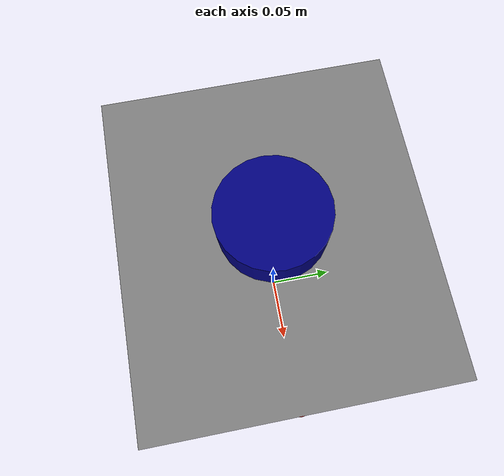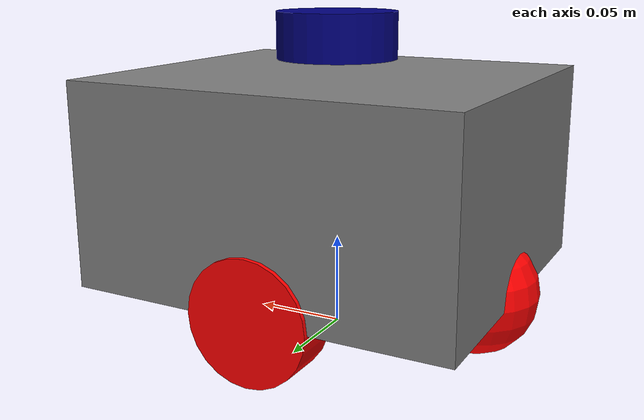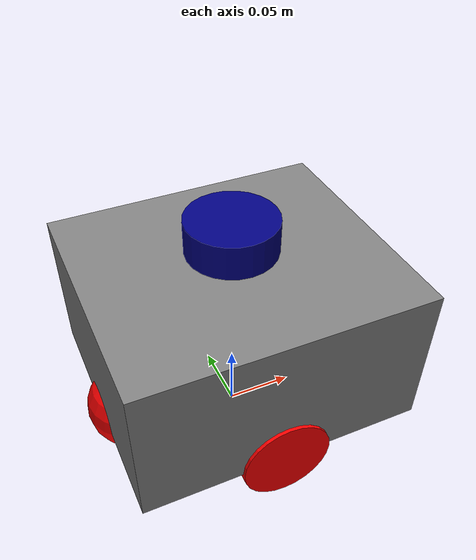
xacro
<?xml version="1.0"?>
<robot name="dasrobot" xmlns:xacro="http://www.ros.org/wiki/xacro">

    <!-- Конфигурационные модули -->
    <xacro:include filename="materials.xacro" />
    <xacro:include filename="properties.xacro" />
    <xacro:include filename="inertial_macros.xacro" />

    <!-- Основные модули -->
    <xacro:include filename="base.xacro" />
    <xacro:include filename="wheels.xacro" />
    <xacro:include filename="lidar.xacro" />

    <!-- Подключаемые модули -->
    <xacro:include filename="gazebo_plugins.xacro" />

</robot>

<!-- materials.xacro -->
<robot xmlns:xacro="http://www.ros.org/wiki/xacro">

    <!-- Цвета -->
    <material name="blue">
        <color rgba="0 0 0.5 1" />
    </material>

    <material name="red">
        <color rgba="1 0 0 1" />
    </material>

    <material name="grey">
        <color rgba="0.5 0.5 0.5 1" />
    </material>

    <material name="white">
        <color rgba="1.0 1.0 1.0 1.0"/>
    </material>

</robot>

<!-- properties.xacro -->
<robot xmlns:xacro="http://www.ros.org/wiki/xacro">

    <!-- Параметры базы -->
    <xacro:property name="base_mass" value="1.0" />
    <xacro:property name="base_length" value="0.21" />
    <xacro:property name="base_width" value="0.185" />
    <xacro:property name="base_height" value="0.11" />

    <!-- Параметры лидара -->
    <xacro:property name="lidar_mass" value="0.1" />
    <xacro:property name="lidar_length" value="0.025" />
    <xacro:property name="lidar_radius" value="0.0325" />
    <xacro:property name="lidar_offset_z" value="0.13" />

    <!-- Параметры ведущих колес -->
    <xacro:property name="wheel_mass" value="0.1" />
    <xacro:property name="wheel_count" value="2" />
    <xacro:property name="wheel_radius" value="0.033" />
    <xacro:property name="wheel_length" value="0.025" />
    <xacro:property name="wheel_separation" value="0.165" />

    <!-- Параметры поддерживающих колес -->
    <xacro:property name="caster_mass" value="0.1" />
    <xacro:property name="caster_radius" value="0.033" />
    <xacro:property name="caster_separation" value="0.165" />

</robot>

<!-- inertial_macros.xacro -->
<robot xmlns:xacro="http://www.ros.org/wiki/xacro">

    <!-- Макросы инерции -->
    <xacro:macro name="box_inertial" params="mass length width height">
        <inertial>
            <origin xyz="0 0 ${height/2}" rpy="0 0 0"/>
            <mass value="${mass}"/>
            <inertia ixx="${(mass/12.0)*(width*width + height*height)}"
                    iyy="${(mass/12.0)*(length*length + height*height)}"
                    izz="${(mass/12.0)*(length*length + width*width)}"
                    ixy="0" ixz="0" iyz="0"/>
        </inertial>
    </xacro:macro>

    <xacro:macro name="sphere_inertial" params="mass radius">
        <inertial>
            <origin xyz="0 0 0" rpy="0 0 0"/>
            <mass value="${mass}"/>
            <inertia ixx="${(2.0/5.0)*mass*radius*radius}"
                    iyy="${(2.0/5.0)*mass*radius*radius}"
                    izz="${(2.0/5.0)*mass*radius*radius}"
                    ixy="0" ixz="0" iyz="0"/>
        </inertial>
    </xacro:macro>

    <xacro:macro name="cylinder_inertial" params="mass radius length">
        <inertial>
            <origin xyz="0 0 0" rpy="0 0 0"/>
            <mass value="${mass}"/>
            <inertia ixx="${(mass/12.0)*(3*radius*radius + length*length)}"
                    iyy="${(mass/4.0)*radius*radius + (mass/12.0)*length*length}"
                    izz="${(mass/4.0)*radius*radius + (mass/12.0)*length*length}"
                    ixy="0" ixz="0" iyz="0"/>
        </inertial>
    </xacro:macro>

</robot>

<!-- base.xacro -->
<robot xmlns:xacro="http://www.ros.org/wiki/xacro">

    <!-- Ссылки -->
    <link name="base_footprint" />

    <link name="base_link">
        <visual>
            <geometry>
                <box size="${base_length} ${base_width} ${base_height}" />
            </geometry>
            <origin xyz="0 0 ${base_height / 2.0}" rpy="0 0 0" />
            <material name="grey" />
        </visual>
        <collision>
            <geometry>
                <box size="${base_length} ${base_width} ${base_height}" />
            </geometry>
            <origin xyz="0 0 ${base_height / 2.0}" rpy="0 0 0" />
        </collision>
        <xacro:box_inertial mass="${base_mass}" length="${base_length}" width="${base_width}" height="${base_height}"/>
    </link>

    <!-- Соединения -->
    <joint name="base_joint" type="fixed">
        <parent link="base_footprint" />
        <child link="base_link" />
        <origin xyz="0 0 ${wheel_radius}" rpy="0 0 0" />
    </joint>

</robot>

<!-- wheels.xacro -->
<robot xmlns:xacro="http://www.ros.org/wiki/xacro">

    <!-- Макросы -->
    <xacro:macro name="wheel_link" params="prefix">
        <link name="${prefix}_wheel_link">
            <visual>
                <geometry>
                    <cylinder radius="${wheel_radius}" length="${wheel_length}" />
                </geometry>
                <origin xyz="0 0 0" rpy="${pi / 2.0} 0 0" />
                <material name="red" />
            </visual>
            <collision>
                <geometry>
                    <sphere radius="${wheel_radius}" />
                </geometry>
                <origin xyz="0 0 0" rpy="${pi / 2.0} 0 0" />
            </collision>
            <xacro:cylinder_inertial mass="${wheel_mass}" radius="${wheel_radius}" length="${wheel_length}"/>
        </link>
    </xacro:macro>

    <xacro:macro name="caster_link" params="prefix">
        <link name="${prefix}_caster_link">
            <visual>
                <geometry>
                    <sphere radius="${caster_radius}" />
                </geometry>
                <origin xyz="0 0 0" rpy="0 0 0" />
                <material name="red" />
            </visual>
            <collision>
                <geometry>
                    <sphere radius="${caster_radius}" />
                </geometry>
                <origin xyz="0 0 0" rpy="0 0 0" />
            </collision>
            <xacro:sphere_inertial mass="${caster_mass}" radius="${caster_radius}" />
        </link>
    </xacro:macro>

    <!-- Ссылки -->
    <xacro:wheel_link prefix="left" />
    <xacro:wheel_link prefix="right" />
    <xacro:caster_link prefix="front" />
    <xacro:caster_link prefix="rear" />

    <!-- Соединения -->
    <joint name="base_left_wheel_joint" type="continuous">
        <parent link="base_link" />
        <child link="left_wheel_link" />
        <origin xyz="0 ${wheel_separation / 2} 0" />
        <axis xyz="0 1 0" />
    </joint>

    <joint name="base_right_wheel_joint" type="continuous">
        <parent link="base_link" />
        <child link="right_wheel_link" />
        <origin xyz="0 ${-wheel_separation / 2} 0" />
        <axis xyz="0 1 0" />
    </joint>

    <joint name="base_front_caster_joint" type="fixed">
        <parent link="base_link" />
        <child link="front_caster_link" />
        <origin xyz="${caster_separation / 2} 0 0" />
    </joint>

    <joint name="base_rear_caster_joint" type="fixed">
        <parent link="base_link" />
        <child link="rear_caster_link" />
        <origin xyz="${-caster_separation / 2} 0 0" />
    </joint>

</robot>

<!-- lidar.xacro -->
<robot xmlns:xacro="http://www.ros.org/wiki/xacro" name="lidar">

  <!-- Ссылка -->
  <link name="lidar_link">
    <visual>
      <geometry>
        <cylinder radius="${lidar_radius}" length="${lidar_length}"/>
      </geometry>
      <origin xyz="0 0 0" rpy="0 0 0"/>
      <material name="blue"/>
    </visual>
    <collision>
      <geometry>
        <cylinder radius="${lidar_radius}" length="${lidar_length}"/>
      </geometry>
      <origin xyz="0 0 0" rpy="0 0 0"/>
    </collision>
    <xacro:cylinder_inertial mass="${lidar_mass}" radius="${lidar_radius}" length="${lidar_length}"/>
  </link>

  <!-- Соединение -->
  <joint name="base_lidar_joint" type="fixed">
    <parent link="base_link"/>
    <child link="lidar_link"/>
    <origin xyz="0 0 ${lidar_offset_z}" rpy="0 0 0"/>
  </joint>

</robot>
